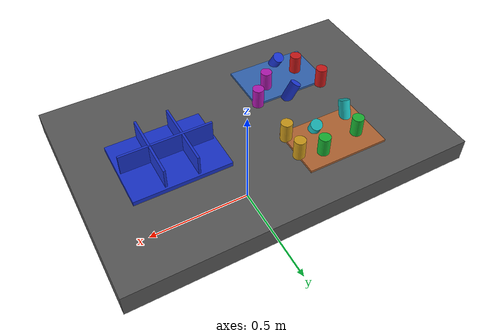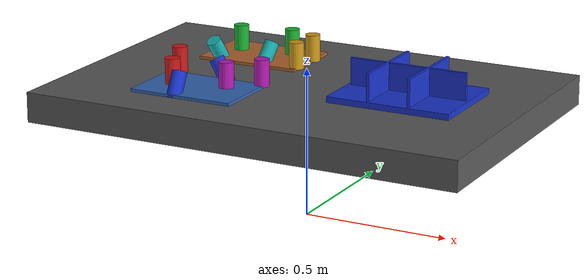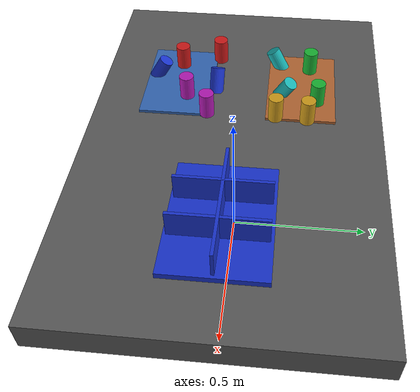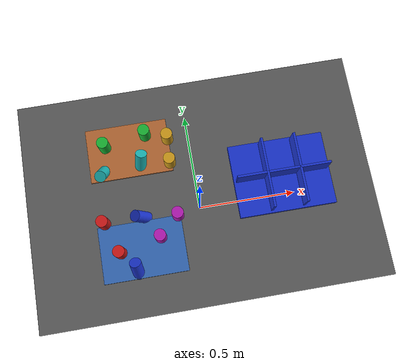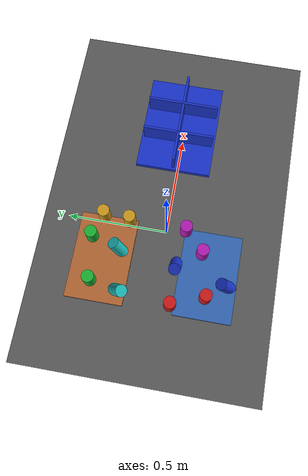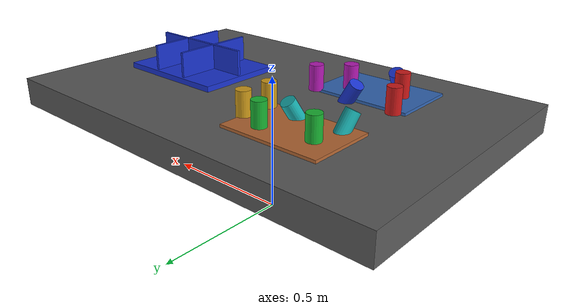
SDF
<?xml version="1.0" ?>
<sdf version="1.9">
  <!-- Standalone M1B scene.  The controller-backed Panda is spawned by the
       existing launch path; this file never alters the frozen M1A cube world. -->
  <world name="industrial_cylinder_v1">
    <physics name="bullet" type="bullet"><max_step_size>0.001</max_step_size><real_time_factor>1.0</real_time_factor></physics>
    <plugin name="gz::sim::systems::Physics" filename="gz-sim-physics-system"><engine><filename>gz-physics-bullet-featherstone-plugin</filename></engine></plugin>
    <plugin name="gz::sim::systems::UserCommands" filename="gz-sim-user-commands-system"/>
    <plugin name="gz::sim::systems::SceneBroadcaster" filename="gz-sim-scene-broadcaster-system"/>
    <plugin name="gz::sim::systems::Sensors" filename="gz-sim-sensors-system"><render_engine>ogre2</render_engine></plugin>
    <gravity>0 0 -9.81</gravity>
    <light type="directional" name="industrial_light"><pose>0 0 5 0 0 0</pose><direction>-0.3 0.2 -0.9</direction><diffuse>0.9 0.9 0.9 1</diffuse></light>
    <model name="industrial_work_table"><static>true</static><link name="link"><pose>0 0 0.4 0 0 0</pose><collision name="collision"><geometry><box><size>1.5 1.0 0.1</size></box></geometry></collision><visual name="visual"><geometry><box><size>1.5 1.0 0.1</size></box></geometry><material><diffuse>0.35 0.35 0.35 1</diffuse></material></visual></link></model>
    <model name="camera_fixture"><static>true</static><link name="camera_rgbd"><pose>-0.80 -0.80 1.40 0 0.77 0.93</pose><sensor name="front_rgbd" type="rgbd_camera"><always_on>1</always_on><update_rate>15</update_rate><topic>/xh/camera/rgbd</topic><camera><horizontal_fov>1.047</horizontal_fov><image><width>640</width><height>480</height><format>R8G8B8</format></image><clip><near>0.1</near><far>4.0</far></clip></camera></sensor></link></model>
    <model name="incoming_zone_a"><static>true</static><link name="link"><pose>-0.28 -0.22 0.455 0 0 0</pose><visual name="visual"><geometry><box><size>0.36 0.24 0.01</size></box></geometry><material><diffuse>0.2 0.4 0.7 1</diffuse></material></visual></link></model>
    <model name="incoming_zone_b"><static>true</static><link name="link"><pose>-0.28 0.22 0.455 0 0 0</pose><visual name="visual"><geometry><box><size>0.36 0.24 0.01</size></box></geometry><material><diffuse>0.7 0.4 0.2 1</diffuse></material></visual></link></model>
    <!-- M1B_RANDOM_PARTS_BEGIN -->
    <model name="cylinder_01"><pose>-0.4243 -0.0877 0.5000 0.0000 0.0000 -0.9721</pose><link name="link"><inertial><mass>0.06</mass></inertial><collision name="collision"><geometry><cylinder><radius>0.025</radius><length>0.09</length></cylinder></geometry></collision><visual name="visual"><geometry><cylinder><radius>0.025</radius><length>0.09</length></cylinder></geometry><material><diffuse>0.800 0.100 0.100 1</diffuse><specular>0.15 0.15 0.15 1</specular></material></visual></link></model>
    <model name="cylinder_02"><pose>-0.1985 0.2750 0.5000 3.1416 0.0000 -0.9701</pose><link name="link"><inertial><mass>0.06</mass></inertial><collision name="collision"><geometry><cylinder><radius>0.025</radius><length>0.09</length></cylinder></geometry></collision><visual name="visual"><geometry><cylinder><radius>0.025</radius><length>0.09</length></cylinder></geometry><material><diffuse>0.100 0.700 0.200 1</diffuse><specular>0.15 0.15 0.15 1</specular></material></visual></link></model>
    <model name="cylinder_03"><pose>-0.3131 -0.2981 0.4800 0.4500 -0.3000 -2.5216</pose><link name="link"><inertial><mass>0.06</mass></inertial><collision name="collision"><geometry><cylinder><radius>0.025</radius><length>0.09</length></cylinder></geometry></collision><visual name="visual"><geometry><cylinder><radius>0.025</radius><length>0.09</length></cylinder></geometry><material><diffuse>0.100 0.200 0.800 1</diffuse><specular>0.15 0.15 0.15 1</specular></material></visual></link></model>
    <model name="cylinder_04"><pose>-0.1088 0.1339 0.5000 0.0000 0.0000 -1.4084</pose><link name="link"><inertial><mass>0.06</mass></inertial><collision name="collision"><geometry><cylinder><radius>0.025</radius><length>0.09</length></cylinder></geometry></collision><visual name="visual"><geometry><cylinder><radius>0.025</radius><length>0.09</length></cylinder></geometry><material><diffuse>0.800 0.600 0.100 1</diffuse><specular>0.15 0.15 0.15 1</specular></material></visual></link></model>
    <model name="cylinder_05"><pose>-0.1961 -0.1831 0.5000 3.1416 0.0000 -1.1908</pose><link name="link"><inertial><mass>0.06</mass></inertial><collision name="collision"><geometry><cylinder><radius>0.025</radius><length>0.09</length></cylinder></geometry></collision><visual name="visual"><geometry><cylinder><radius>0.025</radius><length>0.09</length></cylinder></geometry><material><diffuse>0.700 0.100 0.700 1</diffuse><specular>0.15 0.15 0.15 1</specular></material></visual></link></model>
    <model name="cylinder_06"><pose>-0.4029 0.1294 0.4800 0.4500 -0.3000 0.2412</pose><link name="link"><inertial><mass>0.06</mass></inertial><collision name="collision"><geometry><cylinder><radius>0.025</radius><length>0.09</length></cylinder></geometry></collision><visual name="visual"><geometry><cylinder><radius>0.025</radius><length>0.09</length></cylinder></geometry><material><diffuse>0.100 0.700 0.700 1</diffuse><specular>0.15 0.15 0.15 1</specular></material></visual></link></model>
    <model name="cylinder_07"><pose>-0.3722 -0.2218 0.5000 0.0000 0.0000 -2.2726</pose><link name="link"><inertial><mass>0.06</mass></inertial><collision name="collision"><geometry><cylinder><radius>0.025</radius><length>0.09</length></cylinder></geometry></collision><visual name="visual"><geometry><cylinder><radius>0.025</radius><length>0.09</length></cylinder></geometry><material><diffuse>0.800 0.100 0.100 1</diffuse><specular>0.15 0.15 0.15 1</specular></material></visual></link></model>
    <model name="cylinder_08"><pose>-0.3793 0.2474 0.5000 3.1416 0.0000 2.7900</pose><link name="link"><inertial><mass>0.06</mass></inertial><collision name="collision"><geometry><cylinder><radius>0.025</radius><length>0.09</length></cylinder></geometry></collision><visual name="visual"><geometry><cylinder><radius>0.025</radius><length>0.09</length></cylinder></geometry><material><diffuse>0.100 0.700 0.200 1</diffuse><specular>0.15 0.15 0.15 1</specular></material></visual></link></model>
    <model name="cylinder_09"><pose>-0.2657 -0.0847 0.4800 0.4500 -0.3000 -1.0833</pose><link name="link"><inertial><mass>0.06</mass></inertial><collision name="collision"><geometry><cylinder><radius>0.025</radius><length>0.09</length></cylinder></geometry></collision><visual name="visual"><geometry><cylinder><radius>0.025</radius><length>0.09</length></cylinder></geometry><material><diffuse>0.100 0.200 0.800 1</diffuse><specular>0.15 0.15 0.15 1</specular></material></visual></link></model>
    <model name="cylinder_10"><pose>-0.1039 0.2427 0.5000 0.0000 0.0000 2.1308</pose><link name="link"><inertial><mass>0.06</mass></inertial><collision name="collision"><geometry><cylinder><radius>0.025</radius><length>0.09</length></cylinder></geometry></collision><visual name="visual"><geometry><cylinder><radius>0.025</radius><length>0.09</length></cylinder></geometry><material><diffuse>0.800 0.600 0.100 1</diffuse><specular>0.15 0.15 0.15 1</specular></material></visual></link></model>
    <model name="cylinder_11"><pose>-0.1104 -0.1024 0.5000 3.1416 0.0000 -0.8355</pose><link name="link"><inertial><mass>0.06</mass></inertial><collision name="collision"><geometry><cylinder><radius>0.025</radius><length>0.09</length></cylinder></geometry></collision><visual name="visual"><geometry><cylinder><radius>0.025</radius><length>0.09</length></cylinder></geometry><material><diffuse>0.700 0.100 0.700 1</diffuse><specular>0.15 0.15 0.15 1</specular></material></visual></link></model>
    <model name="cylinder_12"><pose>-0.2324 0.1583 0.4800 0.4500 -0.3000 -2.9601</pose><link name="link"><inertial><mass>0.06</mass></inertial><collision name="collision"><geometry><cylinder><radius>0.025</radius><length>0.09</length></cylinder></geometry></collision><visual name="visual"><geometry><cylinder><radius>0.025</radius><length>0.09</length></cylinder></geometry><material><diffuse>0.100 0.700 0.700 1</diffuse><specular>0.15 0.15 0.15 1</specular></material></visual></link></model>
    <!-- M1B_RANDOM_PARTS_END -->
    <model name="blue_partition_bin"><static>true</static><pose>0.36 0 0.45 0 0 0</pose><link name="link"><collision name="floor"><pose>0 0 0.01 0 0 0</pose><geometry><box><size>0.42 0.32 0.02</size></box></geometry></collision><visual name="floor_visual"><pose>0 0 0.01 0 0 0</pose><geometry><box><size>0.42 0.32 0.02</size></box></geometry><material><diffuse>0.1 0.2 0.8 1</diffuse></material></visual><visual name="row_divider"><pose>0 0 0.06 0 0 0</pose><geometry><box><size>0.40 0.01 0.10</size></box></geometry><material><diffuse>0.1 0.2 0.8 1</diffuse></material></visual><visual name="col_divider_a"><pose>-0.07 0 0.06 0 0 0</pose><geometry><box><size>0.01 0.30 0.10</size></box></geometry><material><diffuse>0.1 0.2 0.8 1</diffuse></material></visual><visual name="col_divider_b"><pose>0.07 0 0.06 0 0 0</pose><geometry><box><size>0.01 0.30 0.10</size></box></geometry><material><diffuse>0.1 0.2 0.8 1</diffuse></material></visual></link></model>
    <!-- Reserved only: second table, bin transport corridor, stackable-bin
         collision volume, and second arm mounting namespace. -->
  </world>
</sdf>
